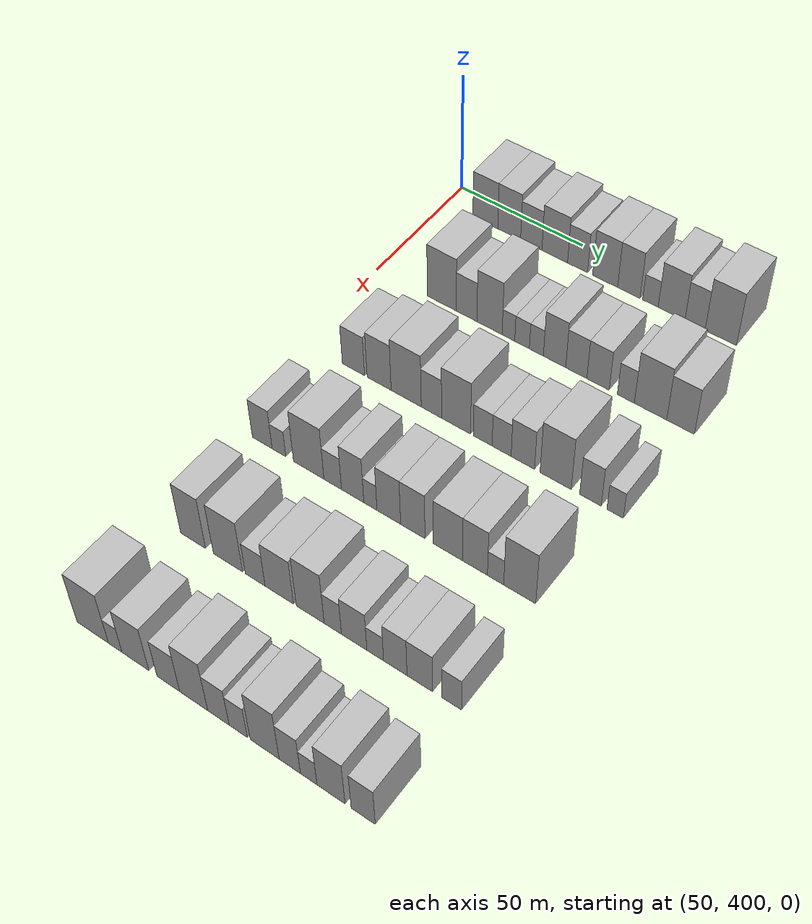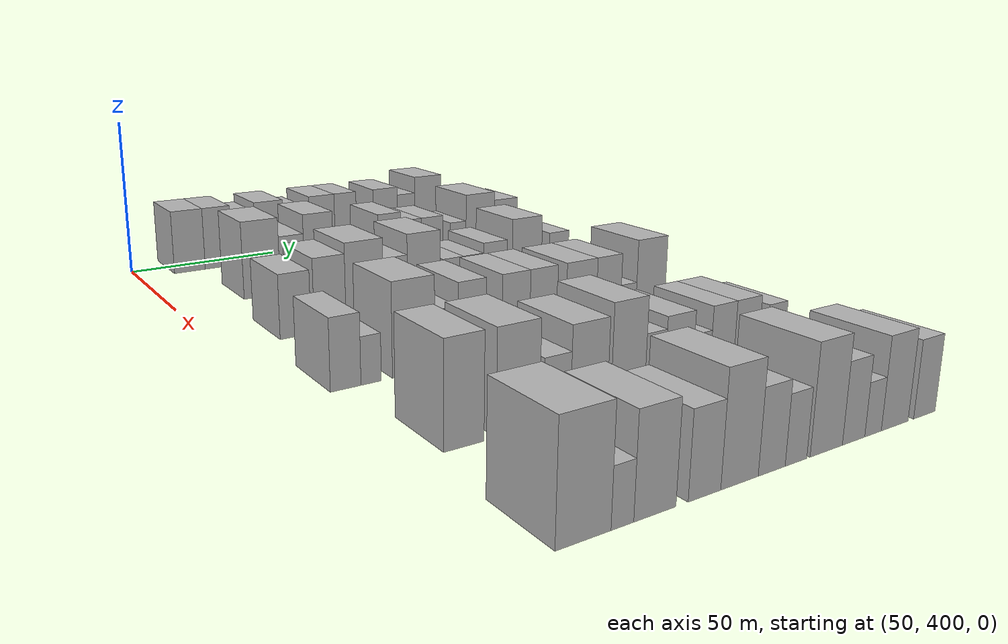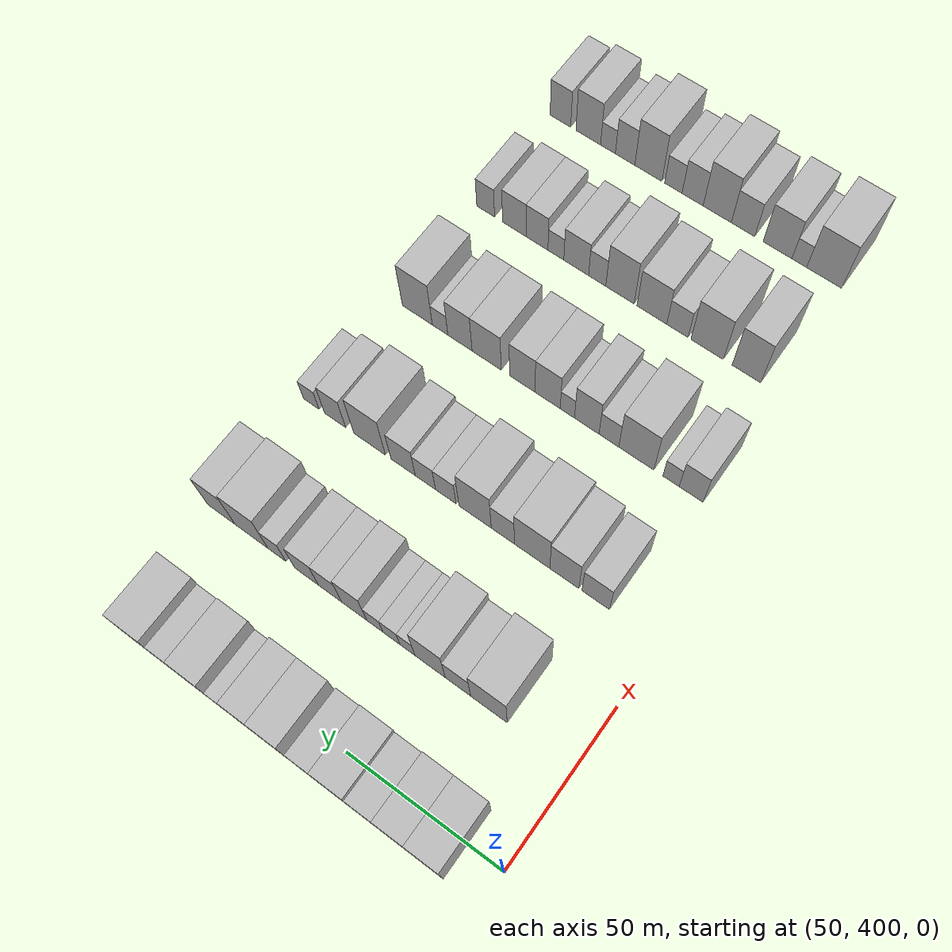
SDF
<sdf version="1.6">
 <world name="default">
  <model name="building_118">
   <static>1</static>
   <pose>50.0000 416.6661 0 0.000000 0.000000 0.000000</pose>
   <link name="link">
    <pose>0 0 10.50 0 0 0</pose>
    <collision name="collision"><geometry><box><size>20.0000 10.4789 21.0000</size></box></geometry></collision>
    <visual name="visual">
     <cast_shadows>0</cast_shadows>
     <geometry><box><size>20.0000 10.4789 21.0000</size></box></geometry>
     <material>
      <script>
       <uri>model://HANNAS_wall/materials/scripts</uri>
       <uri>model://HANNAS_wall/materials/textures</uri>
       <name>vrc/HANNAS_wall</name>
      </script>
     </material>
    </visual>
   </link>
  </model>
  <model name="building_119">
   <static>1</static>
   <pose>50.0000 426.6349 0 0.000000 0.000000 0.000000</pose>
   <link name="link">
    <pose>0 0 10.50 0 0 0</pose>
    <collision name="collision"><geometry><box><size>20.0000 9.4588 21.0000</size></box></geometry></collision>
    <visual name="visual">
     <cast_shadows>0</cast_shadows>
     <geometry><box><size>20.0000 9.4588 21.0000</size></box></geometry>
     <material>
      <script>
       <uri>model://HANNAS_wall/materials/scripts</uri>
       <uri>model://HANNAS_wall/materials/textures</uri>
       <name>vrc/HANNAS_wall</name>
      </script>
     </material>
    </visual>
   </link>
  </model>
  <model name="building_120">
   <static>1</static>
   <pose>50.0000 435.7353 0 0.000000 0.000000 0.000000</pose>
   <link name="link">
    <pose>0 0 9.00 0 0 0</pose>
    <collision name="collision"><geometry><box><size>20.0000 8.7420 18.0000</size></box></geometry></collision>
    <visual name="visual">
     <cast_shadows>0</cast_shadows>
     <geometry><box><size>20.0000 8.7420 18.0000</size></box></geometry>
     <material>
      <script>
       <uri>model://HANNAS_wall/materials/scripts</uri>
       <uri>model://HANNAS_wall/materials/textures</uri>
       <name>vrc/HANNAS_wall</name>
      </script>
     </material>
    </visual>
   </link>
  </model>
  <model name="building_121">
   <static>1</static>
   <pose>50.0000 445.3086 0 0.000000 0.000000 0.000000</pose>
   <link name="link">
    <pose>0 0 10.50 0 0 0</pose>
    <collision name="collision"><geometry><box><size>20.0000 10.4044 21.0000</size></box></geometry></collision>
    <visual name="visual">
     <cast_shadows>0</cast_shadows>
     <geometry><box><size>20.0000 10.4044 21.0000</size></box></geometry>
     <material>
      <script>
       <uri>model://HANNAS_wall/materials/scripts</uri>
       <uri>model://HANNAS_wall/materials/textures</uri>
       <name>vrc/HANNAS_wall</name>
      </script>
     </material>
    </visual>
   </link>
  </model>
  <model name="building_122">
   <static>1</static>
   <pose>50.0000 454.5084 0 0.000000 0.000000 0.000000</pose>
   <link name="link">
    <pose>0 0 9.00 0 0 0</pose>
    <collision name="collision"><geometry><box><size>20.0000 7.9953 18.0000</size></box></geometry></collision>
    <visual name="visual">
     <cast_shadows>0</cast_shadows>
     <geometry><box><size>20.0000 7.9953 18.0000</size></box></geometry>
     <material>
      <script>
       <uri>model://HANNAS_wall/materials/scripts</uri>
       <uri>model://HANNAS_wall/materials/textures</uri>
       <name>vrc/HANNAS_wall</name>
      </script>
     </material>
    </visual>
   </link>
  </model>
  <model name="building_123">
   <static>1</static>
   <pose>50.0000 465.4250 0 0.000000 0.000000 0.000000</pose>
   <link name="link">
    <pose>0 0 10.50 0 0 0</pose>
    <collision name="collision"><geometry><box><size>20.0000 9.8378 21.0000</size></box></geometry></collision>
    <visual name="visual">
     <cast_shadows>0</cast_shadows>
     <geometry><box><size>20.0000 9.8378 21.0000</size></box></geometry>
     <material>
      <script>
       <uri>model://HANNAS_wall/materials/scripts</uri>
       <uri>model://HANNAS_wall/materials/textures</uri>
       <name>vrc/HANNAS_wall</name>
      </script>
     </material>
    </visual>
   </link>
  </model>
  <model name="building_124">
   <static>1</static>
   <pose>50.0000 474.7172 0 0.000000 0.000000 0.000000</pose>
   <link name="link">
    <pose>0 0 10.50 0 0 0</pose>
    <collision name="collision"><geometry><box><size>20.0000 8.7466 21.0000</size></box></geometry></collision>
    <visual name="visual">
     <cast_shadows>0</cast_shadows>
     <geometry><box><size>20.0000 8.7466 21.0000</size></box></geometry>
     <material>
      <script>
       <uri>model://HANNAS_wall/materials/scripts</uri>
       <uri>model://HANNAS_wall/materials/textures</uri>
       <name>vrc/HANNAS_wall</name>
      </script>
     </material>
    </visual>
   </link>
  </model>
  <model name="building_125">
   <static>1</static>
   <pose>50.0000 483.0717 0 0.000000 0.000000 0.000000</pose>
   <link name="link">
    <pose>0 0 6.00 0 0 0</pose>
    <collision name="collision"><geometry><box><size>20.0000 5.9625 12.0000</size></box></geometry></collision>
    <visual name="visual">
     <cast_shadows>0</cast_shadows>
     <geometry><box><size>20.0000 5.9625 12.0000</size></box></geometry>
     <material>
      <script>
       <uri>model://HANNAS_wall/materials/scripts</uri>
       <uri>model://HANNAS_wall/materials/textures</uri>
       <name>vrc/HANNAS_wall</name>
      </script>
     </material>
    </visual>
   </link>
  </model>
  <model name="building_126">
   <static>1</static>
   <pose>50.0000 491.1469 0 0.000000 0.000000 0.000000</pose>
   <link name="link">
    <pose>0 0 10.50 0 0 0</pose>
    <collision name="collision"><geometry><box><size>20.0000 10.1880 21.0000</size></box></geometry></collision>
    <visual name="visual">
     <cast_shadows>0</cast_shadows>
     <geometry><box><size>20.0000 10.1880 21.0000</size></box></geometry>
     <material>
      <script>
       <uri>model://HANNAS_wall/materials/scripts</uri>
       <uri>model://HANNAS_wall/materials/textures</uri>
       <name>vrc/HANNAS_wall</name>
      </script>
     </material>
    </visual>
   </link>
  </model>
  <model name="building_127">
   <static>1</static>
   <pose>50.0000 500.0134 0 0.000000 0.000000 0.000000</pose>
   <link name="link">
    <pose>0 0 9.00 0 0 0</pose>
    <collision name="collision"><geometry><box><size>20.0000 7.5451 18.0000</size></box></geometry></collision>
    <visual name="visual">
     <cast_shadows>0</cast_shadows>
     <geometry><box><size>20.0000 7.5451 18.0000</size></box></geometry>
     <material>
      <script>
       <uri>model://HANNAS_wall/materials/scripts</uri>
       <uri>model://HANNAS_wall/materials/textures</uri>
       <name>vrc/HANNAS_wall</name>
      </script>
     </material>
    </visual>
   </link>
  </model>
  <model name="building_128">
   <static>1</static>
   <pose>50.0000 509.6030 0 0.000000 0.000000 0.000000</pose>
   <link name="link">
    <pose>0 0 12.00 0 0 0</pose>
    <collision name="collision"><geometry><box><size>20.0000 11.6340 24.0000</size></box></geometry></collision>
    <visual name="visual">
     <cast_shadows>0</cast_shadows>
     <geometry><box><size>20.0000 11.6340 24.0000</size></box></geometry>
     <material>
      <script>
       <uri>model://HANNAS_wall/materials/scripts</uri>
       <uri>model://HANNAS_wall/materials/textures</uri>
       <name>vrc/HANNAS_wall</name>
      </script>
     </material>
    </visual>
   </link>
  </model>
  <model name="building_256">
   <static>1</static>
   <pose>90.0000 426.7580 0 0.000000 0.000000 0.000000</pose>
   <link name="link">
    <pose>0 0 12.00 0 0 0</pose>
    <collision name="collision"><geometry><box><size>20.0000 11.7481 24.0000</size></box></geometry></collision>
    <visual name="visual">
     <cast_shadows>0</cast_shadows>
     <geometry><box><size>20.0000 11.7481 24.0000</size></box></geometry>
     <material>
      <script>
       <uri>model://HANNAS_wall/materials/scripts</uri>
       <uri>model://HANNAS_wall/materials/textures</uri>
       <name>vrc/HANNAS_wall</name>
      </script>
     </material>
    </visual>
   </link>
  </model>
  <model name="building_257">
   <static>1</static>
   <pose>90.0000 436.7488 0 0.000000 0.000000 0.000000</pose>
   <link name="link">
    <pose>0 0 9.00 0 0 0</pose>
    <collision name="collision"><geometry><box><size>20.0000 8.2335 18.0000</size></box></geometry></collision>
    <visual name="visual">
     <cast_shadows>0</cast_shadows>
     <geometry><box><size>20.0000 8.2335 18.0000</size></box></geometry>
     <material>
      <script>
       <uri>model://HANNAS_wall/materials/scripts</uri>
       <uri>model://HANNAS_wall/materials/textures</uri>
       <name>vrc/HANNAS_wall</name>
      </script>
     </material>
    </visual>
   </link>
  </model>
  <model name="building_258">
   <static>1</static>
   <pose>90.0000 445.8795 0 0.000000 0.000000 0.000000</pose>
   <link name="link">
    <pose>0 0 12.00 0 0 0</pose>
    <collision name="collision"><geometry><box><size>20.0000 10.0279 24.0000</size></box></geometry></collision>
    <visual name="visual">
     <cast_shadows>0</cast_shadows>
     <geometry><box><size>20.0000 10.0279 24.0000</size></box></geometry>
     <material>
      <script>
       <uri>model://HANNAS_wall/materials/scripts</uri>
       <uri>model://HANNAS_wall/materials/textures</uri>
       <name>vrc/HANNAS_wall</name>
      </script>
     </material>
    </visual>
   </link>
  </model>
  <model name="building_259">
   <static>1</static>
   <pose>90.0000 453.3742 0 0.000000 0.000000 0.000000</pose>
   <link name="link">
    <pose>0 0 6.00 0 0 0</pose>
    <collision name="collision"><geometry><box><size>20.0000 4.9616 12.0000</size></box></geometry></collision>
    <visual name="visual">
     <cast_shadows>0</cast_shadows>
     <geometry><box><size>20.0000 4.9616 12.0000</size></box></geometry>
     <material>
      <script>
       <uri>model://HANNAS_wall/materials/scripts</uri>
       <uri>model://HANNAS_wall/materials/textures</uri>
       <name>vrc/HANNAS_wall</name>
      </script>
     </material>
    </visual>
   </link>
  </model>
  <model name="building_260">
   <static>1</static>
   <pose>90.0000 458.6961 0 0.000000 0.000000 0.000000</pose>
   <link name="link">
    <pose>0 0 6.00 0 0 0</pose>
    <collision name="collision"><geometry><box><size>20.0000 5.6822 12.0000</size></box></geometry></collision>
    <visual name="visual">
     <cast_shadows>0</cast_shadows>
     <geometry><box><size>20.0000 5.6822 12.0000</size></box></geometry>
     <material>
      <script>
       <uri>model://HANNAS_wall/materials/scripts</uri>
       <uri>model://HANNAS_wall/materials/textures</uri>
       <name>vrc/HANNAS_wall</name>
      </script>
     </material>
    </visual>
   </link>
  </model>
  <model name="building_261">
   <static>1</static>
   <pose>90.0000 464.2457 0 0.000000 0.000000 0.000000</pose>
   <link name="link">
    <pose>0 0 6.00 0 0 0</pose>
    <collision name="collision"><geometry><box><size>20.0000 5.4170 12.0000</size></box></geometry></collision>
    <visual name="visual">
     <cast_shadows>0</cast_shadows>
     <geometry><box><size>20.0000 5.4170 12.0000</size></box></geometry>
     <material>
      <script>
       <uri>model://HANNAS_wall/materials/scripts</uri>
       <uri>model://HANNAS_wall/materials/textures</uri>
       <name>vrc/HANNAS_wall</name>
      </script>
     </material>
    </visual>
   </link>
  </model>
  <model name="building_262">
   <static>1</static>
   <pose>90.0000 471.2150 0 0.000000 0.000000 0.000000</pose>
   <link name="link">
    <pose>0 0 10.50 0 0 0</pose>
    <collision name="collision"><geometry><box><size>20.0000 8.5217 21.0000</size></box></geometry></collision>
    <visual name="visual">
     <cast_shadows>0</cast_shadows>
     <geometry><box><size>20.0000 8.5217 21.0000</size></box></geometry>
     <material>
      <script>
       <uri>model://HANNAS_wall/materials/scripts</uri>
       <uri>model://HANNAS_wall/materials/textures</uri>
       <name>vrc/HANNAS_wall</name>
      </script>
     </material>
    </visual>
   </link>
  </model>
  <model name="building_263">
   <static>1</static>
   <pose>90.0000 479.4768 0 0.000000 0.000000 0.000000</pose>
   <link name="link">
    <pose>0 0 9.00 0 0 0</pose>
    <collision name="collision"><geometry><box><size>20.0000 8.0020 18.0000</size></box></geometry></collision>
    <visual name="visual">
     <cast_shadows>0</cast_shadows>
     <geometry><box><size>20.0000 8.0020 18.0000</size></box></geometry>
     <material>
      <script>
       <uri>model://HANNAS_wall/materials/scripts</uri>
       <uri>model://HANNAS_wall/materials/textures</uri>
       <name>vrc/HANNAS_wall</name>
      </script>
     </material>
    </visual>
   </link>
  </model>
  <model name="building_264">
   <static>1</static>
   <pose>90.0000 487.6506 0 0.000000 0.000000 0.000000</pose>
   <link name="link">
    <pose>0 0 9.00 0 0 0</pose>
    <collision name="collision"><geometry><box><size>20.0000 8.3455 18.0000</size></box></geometry></collision>
    <visual name="visual">
     <cast_shadows>0</cast_shadows>
     <geometry><box><size>20.0000 8.3455 18.0000</size></box></geometry>
     <material>
      <script>
       <uri>model://HANNAS_wall/materials/scripts</uri>
       <uri>model://HANNAS_wall/materials/textures</uri>
       <name>vrc/HANNAS_wall</name>
      </script>
     </material>
    </visual>
   </link>
  </model>
  <model name="building_265">
   <static>1</static>
   <pose>90.0000 497.9551 0 0.000000 0.000000 0.000000</pose>
   <link name="link">
    <pose>0 0 7.50 0 0 0</pose>
    <collision name="collision"><geometry><box><size>20.0000 6.2635 15.0000</size></box></geometry></collision>
    <visual name="visual">
     <cast_shadows>0</cast_shadows>
     <geometry><box><size>20.0000 6.2635 15.0000</size></box></geometry>
     <material>
      <script>
       <uri>model://HANNAS_wall/materials/scripts</uri>
       <uri>model://HANNAS_wall/materials/textures</uri>
       <name>vrc/HANNAS_wall</name>
      </script>
     </material>
    </visual>
   </link>
  </model>
  <model name="building_266">
   <static>1</static>
   <pose>90.0000 506.9523 0 0.000000 0.000000 0.000000</pose>
   <link name="link">
    <pose>0 0 12.00 0 0 0</pose>
    <collision name="collision"><geometry><box><size>20.0000 11.7308 24.0000</size></box></geometry></collision>
    <visual name="visual">
     <cast_shadows>0</cast_shadows>
     <geometry><box><size>20.0000 11.7308 24.0000</size></box></geometry>
     <material>
      <script>
       <uri>model://HANNAS_wall/materials/scripts</uri>
       <uri>model://HANNAS_wall/materials/textures</uri>
       <name>vrc/HANNAS_wall</name>
      </script>
     </material>
    </visual>
   </link>
  </model>
  <model name="building_267">
   <static>1</static>
   <pose>90.0000 517.7709 0 0.000000 0.000000 0.000000</pose>
   <link name="link">
    <pose>0 0 10.50 0 0 0</pose>
    <collision name="collision"><geometry><box><size>20.0000 9.9063 21.0000</size></box></geometry></collision>
    <visual name="visual">
     <cast_shadows>0</cast_shadows>
     <geometry><box><size>20.0000 9.9063 21.0000</size></box></geometry>
     <material>
      <script>
       <uri>model://HANNAS_wall/materials/scripts</uri>
       <uri>model://HANNAS_wall/materials/textures</uri>
       <name>vrc/HANNAS_wall</name>
      </script>
     </material>
    </visual>
   </link>
  </model>
  <model name="building_393">
   <static>1</static>
   <pose>130.0000 420.6282 0 0.000000 0.000000 0.000000</pose>
   <link name="link">
    <pose>0 0 9.00 0 0 0</pose>
    <collision name="collision"><geometry><box><size>20.0000 8.9388 18.0000</size></box></geometry></collision>
    <visual name="visual">
     <cast_shadows>0</cast_shadows>
     <geometry><box><size>20.0000 8.9388 18.0000</size></box></geometry>
     <material>
      <script>
       <uri>model://HANNAS_wall/materials/scripts</uri>
       <uri>model://HANNAS_wall/materials/textures</uri>
       <name>vrc/HANNAS_wall</name>
      </script>
     </material>
    </visual>
   </link>
  </model>
  <model name="building_394">
   <static>1</static>
   <pose>130.0000 430.8723 0 0.000000 0.000000 0.000000</pose>
   <link name="link">
    <pose>0 0 10.50 0 0 0</pose>
    <collision name="collision"><geometry><box><size>20.0000 9.5493 21.0000</size></box></geometry></collision>
    <visual name="visual">
     <cast_shadows>0</cast_shadows>
     <geometry><box><size>20.0000 9.5493 21.0000</size></box></geometry>
     <material>
      <script>
       <uri>model://HANNAS_wall/materials/scripts</uri>
       <uri>model://HANNAS_wall/materials/textures</uri>
       <name>vrc/HANNAS_wall</name>
      </script>
     </material>
    </visual>
   </link>
  </model>
  <model name="building_395">
   <static>1</static>
   <pose>130.0000 441.5391 0 0.000000 0.000000 0.000000</pose>
   <link name="link">
    <pose>0 0 12.00 0 0 0</pose>
    <collision name="collision"><geometry><box><size>20.0000 11.7843 24.0000</size></box></geometry></collision>
    <visual name="visual">
     <cast_shadows>0</cast_shadows>
     <geometry><box><size>20.0000 11.7843 24.0000</size></box></geometry>
     <material>
      <script>
       <uri>model://HANNAS_wall/materials/scripts</uri>
       <uri>model://HANNAS_wall/materials/textures</uri>
       <name>vrc/HANNAS_wall</name>
      </script>
     </material>
    </visual>
   </link>
  </model>
  <model name="building_396">
   <static>1</static>
   <pose>130.0000 451.3376 0 0.000000 0.000000 0.000000</pose>
   <link name="link">
    <pose>0 0 9.00 0 0 0</pose>
    <collision name="collision"><geometry><box><size>20.0000 7.8128 18.0000</size></box></geometry></collision>
    <visual name="visual">
     <cast_shadows>0</cast_shadows>
     <geometry><box><size>20.0000 7.8128 18.0000</size></box></geometry>
     <material>
      <script>
       <uri>model://HANNAS_wall/materials/scripts</uri>
       <uri>model://HANNAS_wall/materials/textures</uri>
       <name>vrc/HANNAS_wall</name>
      </script>
     </material>
    </visual>
   </link>
  </model>
  <model name="building_397">
   <static>1</static>
   <pose>130.0000 460.7536 0 0.000000 0.000000 0.000000</pose>
   <link name="link">
    <pose>0 0 12.00 0 0 0</pose>
    <collision name="collision"><geometry><box><size>20.0000 11.0192 24.0000</size></box></geometry></collision>
    <visual name="visual">
     <cast_shadows>0</cast_shadows>
     <geometry><box><size>20.0000 11.0192 24.0000</size></box></geometry>
     <material>
      <script>
       <uri>model://HANNAS_wall/materials/scripts</uri>
       <uri>model://HANNAS_wall/materials/textures</uri>
       <name>vrc/HANNAS_wall</name>
      </script>
     </material>
    </visual>
   </link>
  </model>
  <model name="building_398">
   <static>1</static>
   <pose>130.0000 470.8052 0 0.000000 0.000000 0.000000</pose>
   <link name="link">
    <pose>0 0 7.50 0 0 0</pose>
    <collision name="collision"><geometry><box><size>20.0000 7.0839 15.0000</size></box></geometry></collision>
    <visual name="visual">
     <cast_shadows>0</cast_shadows>
     <geometry><box><size>20.0000 7.0839 15.0000</size></box></geometry>
     <material>
      <script>
       <uri>model://HANNAS_wall/materials/scripts</uri>
       <uri>model://HANNAS_wall/materials/textures</uri>
       <name>vrc/HANNAS_wall</name>
      </script>
     </material>
    </visual>
   </link>
  </model>
  <model name="building_399">
   <static>1</static>
   <pose>130.0000 477.8671 0 0.000000 0.000000 0.000000</pose>
   <link name="link">
    <pose>0 0 7.50 0 0 0</pose>
    <collision name="collision"><geometry><box><size>20.0000 7.0399 15.0000</size></box></geometry></collision>
    <visual name="visual">
     <cast_shadows>0</cast_shadows>
     <geometry><box><size>20.0000 7.0399 15.0000</size></box></geometry>
     <material>
      <script>
       <uri>model://HANNAS_wall/materials/scripts</uri>
       <uri>model://HANNAS_wall/materials/textures</uri>
       <name>vrc/HANNAS_wall</name>
      </script>
     </material>
    </visual>
   </link>
  </model>
  <model name="building_400">
   <static>1</static>
   <pose>130.0000 485.6663 0 0.000000 0.000000 0.000000</pose>
   <link name="link">
    <pose>0 0 9.00 0 0 0</pose>
    <collision name="collision"><geometry><box><size>20.0000 8.5584 18.0000</size></box></geometry></collision>
    <visual name="visual">
     <cast_shadows>0</cast_shadows>
     <geometry><box><size>20.0000 8.5584 18.0000</size></box></geometry>
     <material>
      <script>
       <uri>model://HANNAS_wall/materials/scripts</uri>
       <uri>model://HANNAS_wall/materials/textures</uri>
       <name>vrc/HANNAS_wall</name>
      </script>
     </material>
    </visual>
   </link>
  </model>
  <model name="building_401">
   <static>1</static>
   <pose>130.0000 497.5579 0 0.000000 0.000000 0.000000</pose>
   <link name="link">
    <pose>0 0 12.00 0 0 0</pose>
    <collision name="collision"><geometry><box><size>20.0000 11.2248 24.0000</size></box></geometry></collision>
    <visual name="visual">
     <cast_shadows>0</cast_shadows>
     <geometry><box><size>20.0000 11.2248 24.0000</size></box></geometry>
     <material>
      <script>
       <uri>model://HANNAS_wall/materials/scripts</uri>
       <uri>model://HANNAS_wall/materials/textures</uri>
       <name>vrc/HANNAS_wall</name>
      </script>
     </material>
    </visual>
   </link>
  </model>
  <model name="building_402">
   <static>1</static>
   <pose>130.0000 509.9693 0 0.000000 0.000000 0.000000</pose>
   <link name="link">
    <pose>0 0 9.00 0 0 0</pose>
    <collision name="collision"><geometry><box><size>20.0000 7.5980 18.0000</size></box></geometry></collision>
    <visual name="visual">
     <cast_shadows>0</cast_shadows>
     <geometry><box><size>20.0000 7.5980 18.0000</size></box></geometry>
     <material>
      <script>
       <uri>model://HANNAS_wall/materials/scripts</uri>
       <uri>model://HANNAS_wall/materials/textures</uri>
       <name>vrc/HANNAS_wall</name>
      </script>
     </material>
    </visual>
   </link>
  </model>
  <model name="building_403">
   <static>1</static>
   <pose>130.0000 518.6241 0 0.000000 0.000000 0.000000</pose>
   <link name="link">
    <pose>0 0 6.00 0 0 0</pose>
    <collision name="collision"><geometry><box><size>20.0000 5.7116 12.0000</size></box></geometry></collision>
    <visual name="visual">
     <cast_shadows>0</cast_shadows>
     <geometry><box><size>20.0000 5.7116 12.0000</size></box></geometry>
     <material>
      <script>
       <uri>model://HANNAS_wall/materials/scripts</uri>
       <uri>model://HANNAS_wall/materials/textures</uri>
       <name>vrc/HANNAS_wall</name>
      </script>
     </material>
    </visual>
   </link>
  </model>
  <model name="building_533">
   <static>1</static>
   <pose>170.0000 416.0304 0 0.000000 0.000000 0.000000</pose>
   <link name="link">
    <pose>0 0 9.00 0 0 0</pose>
    <collision name="collision"><geometry><box><size>20.0000 7.8690 18.0000</size></box></geometry></collision>
    <visual name="visual">
     <cast_shadows>0</cast_shadows>
     <geometry><box><size>20.0000 7.8690 18.0000</size></box></geometry>
     <material>
      <script>
       <uri>model://HANNAS_wall/materials/scripts</uri>
       <uri>model://HANNAS_wall/materials/textures</uri>
       <name>vrc/HANNAS_wall</name>
      </script>
     </material>
    </visual>
   </link>
  </model>
  <model name="building_534">
   <static>1</static>
   <pose>170.0000 422.6663 0 0.000000 0.000000 0.000000</pose>
   <link name="link">
    <pose>0 0 6.00 0 0 0</pose>
    <collision name="collision"><geometry><box><size>20.0000 5.4027 12.0000</size></box></geometry></collision>
    <visual name="visual">
     <cast_shadows>0</cast_shadows>
     <geometry><box><size>20.0000 5.4027 12.0000</size></box></geometry>
     <material>
      <script>
       <uri>model://HANNAS_wall/materials/scripts</uri>
       <uri>model://HANNAS_wall/materials/textures</uri>
       <name>vrc/HANNAS_wall</name>
      </script>
     </material>
    </visual>
   </link>
  </model>
  <model name="building_535">
   <static>1</static>
   <pose>170.0000 434.2712 0 0.000000 0.000000 0.000000</pose>
   <link name="link">
    <pose>0 0 12.00 0 0 0</pose>
    <collision name="collision"><geometry><box><size>20.0000 11.8073 24.0000</size></box></geometry></collision>
    <visual name="visual">
     <cast_shadows>0</cast_shadows>
     <geometry><box><size>20.0000 11.8073 24.0000</size></box></geometry>
     <material>
      <script>
       <uri>model://HANNAS_wall/materials/scripts</uri>
       <uri>model://HANNAS_wall/materials/textures</uri>
       <name>vrc/HANNAS_wall</name>
      </script>
     </material>
    </visual>
   </link>
  </model>
  <model name="building_536">
   <static>1</static>
   <pose>170.0000 443.5326 0 0.000000 0.000000 0.000000</pose>
   <link name="link">
    <pose>0 0 7.50 0 0 0</pose>
    <collision name="collision"><geometry><box><size>20.0000 6.7155 15.0000</size></box></geometry></collision>
    <visual name="visual">
     <cast_shadows>0</cast_shadows>
     <geometry><box><size>20.0000 6.7155 15.0000</size></box></geometry>
     <material>
      <script>
       <uri>model://HANNAS_wall/materials/scripts</uri>
       <uri>model://HANNAS_wall/materials/textures</uri>
       <name>vrc/HANNAS_wall</name>
      </script>
     </material>
    </visual>
   </link>
  </model>
  <model name="building_537">
   <static>1</static>
   <pose>170.0000 451.0967 0 0.000000 0.000000 0.000000</pose>
   <link name="link">
    <pose>0 0 10.50 0 0 0</pose>
    <collision name="collision"><geometry><box><size>20.0000 8.4126 21.0000</size></box></geometry></collision>
    <visual name="visual">
     <cast_shadows>0</cast_shadows>
     <geometry><box><size>20.0000 8.4126 21.0000</size></box></geometry>
     <material>
      <script>
       <uri>model://HANNAS_wall/materials/scripts</uri>
       <uri>model://HANNAS_wall/materials/textures</uri>
       <name>vrc/HANNAS_wall</name>
      </script>
     </material>
    </visual>
   </link>
  </model>
  <model name="building_538">
   <static>1</static>
   <pose>170.0000 457.7618 0 0.000000 0.000000 0.000000</pose>
   <link name="link">
    <pose>0 0 6.00 0 0 0</pose>
    <collision name="collision"><geometry><box><size>20.0000 4.9177 12.0000</size></box></geometry></collision>
    <visual name="visual">
     <cast_shadows>0</cast_shadows>
     <geometry><box><size>20.0000 4.9177 12.0000</size></box></geometry>
     <material>
      <script>
       <uri>model://HANNAS_wall/materials/scripts</uri>
       <uri>model://HANNAS_wall/materials/textures</uri>
       <name>vrc/HANNAS_wall</name>
      </script>
     </material>
    </visual>
   </link>
  </model>
  <model name="building_539">
   <static>1</static>
   <pose>170.0000 464.6015 0 0.000000 0.000000 0.000000</pose>
   <link name="link">
    <pose>0 0 10.50 0 0 0</pose>
    <collision name="collision"><geometry><box><size>20.0000 8.7617 21.0000</size></box></geometry></collision>
    <visual name="visual">
     <cast_shadows>0</cast_shadows>
     <geometry><box><size>20.0000 8.7617 21.0000</size></box></geometry>
     <material>
      <script>
       <uri>model://HANNAS_wall/materials/scripts</uri>
       <uri>model://HANNAS_wall/materials/textures</uri>
       <name>vrc/HANNAS_wall</name>
      </script>
     </material>
    </visual>
   </link>
  </model>
  <model name="building_540">
   <static>1</static>
   <pose>170.0000 473.4489 0 0.000000 0.000000 0.000000</pose>
   <link name="link">
    <pose>0 0 10.50 0 0 0</pose>
    <collision name="collision"><geometry><box><size>20.0000 8.9331 21.0000</size></box></geometry></collision>
    <visual name="visual">
     <cast_shadows>0</cast_shadows>
     <geometry><box><size>20.0000 8.9331 21.0000</size></box></geometry>
     <material>
      <script>
       <uri>model://HANNAS_wall/materials/scripts</uri>
       <uri>model://HANNAS_wall/materials/textures</uri>
       <name>vrc/HANNAS_wall</name>
      </script>
     </material>
    </visual>
   </link>
  </model>
  <model name="building_541">
   <static>1</static>
   <pose>170.0000 486.1351 0 0.000000 0.000000 0.000000</pose>
   <link name="link">
    <pose>0 0 10.50 0 0 0</pose>
    <collision name="collision"><geometry><box><size>20.0000 10.4394 21.0000</size></box></geometry></collision>
    <visual name="visual">
     <cast_shadows>0</cast_shadows>
     <geometry><box><size>20.0000 10.4394 21.0000</size></box></geometry>
     <material>
      <script>
       <uri>model://HANNAS_wall/materials/scripts</uri>
       <uri>model://HANNAS_wall/materials/textures</uri>
       <name>vrc/HANNAS_wall</name>
      </script>
     </material>
    </visual>
   </link>
  </model>
  <model name="building_542">
   <static>1</static>
   <pose>170.0000 495.7307 0 0.000000 0.000000 0.000000</pose>
   <link name="link">
    <pose>0 0 10.50 0 0 0</pose>
    <collision name="collision"><geometry><box><size>20.0000 8.7518 21.0000</size></box></geometry></collision>
    <visual name="visual">
     <cast_shadows>0</cast_shadows>
     <geometry><box><size>20.0000 8.7518 21.0000</size></box></geometry>
     <material>
      <script>
       <uri>model://HANNAS_wall/materials/scripts</uri>
       <uri>model://HANNAS_wall/materials/textures</uri>
       <name>vrc/HANNAS_wall</name>
      </script>
     </material>
    </visual>
   </link>
  </model>
  <model name="building_543">
   <static>1</static>
   <pose>170.0000 502.9379 0 0.000000 0.000000 0.000000</pose>
   <link name="link">
    <pose>0 0 6.00 0 0 0</pose>
    <collision name="collision"><geometry><box><size>20.0000 5.6624 12.0000</size></box></geometry></collision>
    <visual name="visual">
     <cast_shadows>0</cast_shadows>
     <geometry><box><size>20.0000 5.6624 12.0000</size></box></geometry>
     <material>
      <script>
       <uri>model://HANNAS_wall/materials/scripts</uri>
       <uri>model://HANNAS_wall/materials/textures</uri>
       <name>vrc/HANNAS_wall</name>
      </script>
     </material>
    </visual>
   </link>
  </model>
  <model name="building_544">
   <static>1</static>
   <pose>170.0000 511.2768 0 0.000000 0.000000 0.000000</pose>
   <link name="link">
    <pose>0 0 12.00 0 0 0</pose>
    <collision name="collision"><geometry><box><size>20.0000 11.0154 24.0000</size></box></geometry></collision>
    <visual name="visual">
     <cast_shadows>0</cast_shadows>
     <geometry><box><size>20.0000 11.0154 24.0000</size></box></geometry>
     <material>
      <script>
       <uri>model://HANNAS_wall/materials/scripts</uri>
       <uri>model://HANNAS_wall/materials/textures</uri>
       <name>vrc/HANNAS_wall</name>
      </script>
     </material>
    </visual>
   </link>
  </model>
  <model name="building_666">
   <static>1</static>
   <pose>210.0000 422.9244 0 0.000000 0.000000 0.000000</pose>
   <link name="link">
    <pose>0 0 12.00 0 0 0</pose>
    <collision name="collision"><geometry><box><size>20.0000 9.6665 24.0000</size></box></geometry></collision>
    <visual name="visual">
     <cast_shadows>0</cast_shadows>
     <geometry><box><size>20.0000 9.6665 24.0000</size></box></geometry>
     <material>
      <script>
       <uri>model://HANNAS_wall/materials/scripts</uri>
       <uri>model://HANNAS_wall/materials/textures</uri>
       <name>vrc/HANNAS_wall</name>
      </script>
     </material>
    </visual>
   </link>
  </model>
  <model name="building_667">
   <static>1</static>
   <pose>210.0000 436.3171 0 0.000000 0.000000 0.000000</pose>
   <link name="link">
    <pose>0 0 12.00 0 0 0</pose>
    <collision name="collision"><geometry><box><size>20.0000 11.1189 24.0000</size></box></geometry></collision>
    <visual name="visual">
     <cast_shadows>0</cast_shadows>
     <geometry><box><size>20.0000 11.1189 24.0000</size></box></geometry>
     <material>
      <script>
       <uri>model://HANNAS_wall/materials/scripts</uri>
       <uri>model://HANNAS_wall/materials/textures</uri>
       <name>vrc/HANNAS_wall</name>
      </script>
     </material>
    </visual>
   </link>
  </model>
  <model name="building_668">
   <static>1</static>
   <pose>210.0000 446.5635 0 0.000000 0.000000 0.000000</pose>
   <link name="link">
    <pose>0 0 7.50 0 0 0</pose>
    <collision name="collision"><geometry><box><size>20.0000 7.3739 15.0000</size></box></geometry></collision>
    <visual name="visual">
     <cast_shadows>0</cast_shadows>
     <geometry><box><size>20.0000 7.3739 15.0000</size></box></geometry>
     <material>
      <script>
       <uri>model://HANNAS_wall/materials/scripts</uri>
       <uri>model://HANNAS_wall/materials/textures</uri>
       <name>vrc/HANNAS_wall</name>
      </script>
     </material>
    </visual>
   </link>
  </model>
  <model name="building_669">
   <static>1</static>
   <pose>210.0000 455.4758 0 0.000000 0.000000 0.000000</pose>
   <link name="link">
    <pose>0 0 10.50 0 0 0</pose>
    <collision name="collision"><geometry><box><size>20.0000 10.4506 21.0000</size></box></geometry></collision>
    <visual name="visual">
     <cast_shadows>0</cast_shadows>
     <geometry><box><size>20.0000 10.4506 21.0000</size></box></geometry>
     <material>
      <script>
       <uri>model://HANNAS_wall/materials/scripts</uri>
       <uri>model://HANNAS_wall/materials/textures</uri>
       <name>vrc/HANNAS_wall</name>
      </script>
     </material>
    </visual>
   </link>
  </model>
  <model name="building_670">
   <static>1</static>
   <pose>210.0000 466.7438 0 0.000000 0.000000 0.000000</pose>
   <link name="link">
    <pose>0 0 12.00 0 0 0</pose>
    <collision name="collision"><geometry><box><size>20.0000 10.0853 24.0000</size></box></geometry></collision>
    <visual name="visual">
     <cast_shadows>0</cast_shadows>
     <geometry><box><size>20.0000 10.0853 24.0000</size></box></geometry>
     <material>
      <script>
       <uri>model://HANNAS_wall/materials/scripts</uri>
       <uri>model://HANNAS_wall/materials/textures</uri>
       <name>vrc/HANNAS_wall</name>
      </script>
     </material>
    </visual>
   </link>
  </model>
  <model name="building_671">
   <static>1</static>
   <pose>210.0000 474.8746 0 0.000000 0.000000 0.000000</pose>
   <link name="link">
    <pose>0 0 7.50 0 0 0</pose>
    <collision name="collision"><geometry><box><size>20.0000 6.1763 15.0000</size></box></geometry></collision>
    <visual name="visual">
     <cast_shadows>0</cast_shadows>
     <geometry><box><size>20.0000 6.1763 15.0000</size></box></geometry>
     <material>
      <script>
       <uri>model://HANNAS_wall/materials/scripts</uri>
       <uri>model://HANNAS_wall/materials/textures</uri>
       <name>vrc/HANNAS_wall</name>
      </script>
     </material>
    </visual>
   </link>
  </model>
  <model name="building_672">
   <static>1</static>
   <pose>210.0000 482.4415 0 0.000000 0.000000 0.000000</pose>
   <link name="link">
    <pose>0 0 9.00 0 0 0</pose>
    <collision name="collision"><geometry><box><size>20.0000 8.9576 18.0000</size></box></geometry></collision>
    <visual name="visual">
     <cast_shadows>0</cast_shadows>
     <geometry><box><size>20.0000 8.9576 18.0000</size></box></geometry>
     <material>
      <script>
       <uri>model://HANNAS_wall/materials/scripts</uri>
       <uri>model://HANNAS_wall/materials/textures</uri>
       <name>vrc/HANNAS_wall</name>
      </script>
     </material>
    </visual>
   </link>
  </model>
  <model name="building_673">
   <static>1</static>
   <pose>210.0000 489.8164 0 0.000000 0.000000 0.000000</pose>
   <link name="link">
    <pose>0 0 6.00 0 0 0</pose>
    <collision name="collision"><geometry><box><size>20.0000 5.7922 12.0000</size></box></geometry></collision>
    <visual name="visual">
     <cast_shadows>0</cast_shadows>
     <geometry><box><size>20.0000 5.7922 12.0000</size></box></geometry>
     <material>
      <script>
       <uri>model://HANNAS_wall/materials/scripts</uri>
       <uri>model://HANNAS_wall/materials/textures</uri>
       <name>vrc/HANNAS_wall</name>
      </script>
     </material>
    </visual>
   </link>
  </model>
  <model name="building_674">
   <static>1</static>
   <pose>210.0000 496.7532 0 0.000000 0.000000 0.000000</pose>
   <link name="link">
    <pose>0 0 9.00 0 0 0</pose>
    <collision name="collision"><geometry><box><size>20.0000 8.0813 18.0000</size></box></geometry></collision>
    <visual name="visual">
     <cast_shadows>0</cast_shadows>
     <geometry><box><size>20.0000 8.0813 18.0000</size></box></geometry>
     <material>
      <script>
       <uri>model://HANNAS_wall/materials/scripts</uri>
       <uri>model://HANNAS_wall/materials/textures</uri>
       <name>vrc/HANNAS_wall</name>
      </script>
     </material>
    </visual>
   </link>
  </model>
  <model name="building_675">
   <static>1</static>
   <pose>210.0000 505.1305 0 0.000000 0.000000 0.000000</pose>
   <link name="link">
    <pose>0 0 9.00 0 0 0</pose>
    <collision name="collision"><geometry><box><size>20.0000 8.6734 18.0000</size></box></geometry></collision>
    <visual name="visual">
     <cast_shadows>0</cast_shadows>
     <geometry><box><size>20.0000 8.6734 18.0000</size></box></geometry>
     <material>
      <script>
       <uri>model://HANNAS_wall/materials/scripts</uri>
       <uri>model://HANNAS_wall/materials/textures</uri>
       <name>vrc/HANNAS_wall</name>
      </script>
     </material>
    </visual>
   </link>
  </model>
  <model name="building_676">
   <static>1</static>
   <pose>210.0000 515.8028 0 0.000000 0.000000 0.000000</pose>
   <link name="link">
    <pose>0 0 7.50 0 0 0</pose>
    <collision name="collision"><geometry><box><size>20.0000 6.6712 15.0000</size></box></geometry></collision>
    <visual name="visual">
     <cast_shadows>0</cast_shadows>
     <geometry><box><size>20.0000 6.6712 15.0000</size></box></geometry>
     <material>
      <script>
       <uri>model://HANNAS_wall/materials/scripts</uri>
       <uri>model://HANNAS_wall/materials/textures</uri>
       <name>vrc/HANNAS_wall</name>
      </script>
     </material>
    </visual>
   </link>
  </model>
  <model name="building_805">
   <static>1</static>
   <pose>250.0000 420.7037 0 0.000000 0.000000 0.000000</pose>
   <link name="link">
    <pose>0 0 12.00 0 0 0</pose>
    <collision name="collision"><geometry><box><size>20.0000 11.9902 24.0000</size></box></geometry></collision>
    <visual name="visual">
     <cast_shadows>0</cast_shadows>
     <geometry><box><size>20.0000 11.9902 24.0000</size></box></geometry>
     <material>
      <script>
       <uri>model://HANNAS_wall/materials/scripts</uri>
       <uri>model://HANNAS_wall/materials/textures</uri>
       <name>vrc/HANNAS_wall</name>
      </script>
     </material>
    </visual>
   </link>
  </model>
  <model name="building_806">
   <static>1</static>
   <pose>250.0000 429.2651 0 0.000000 0.000000 0.000000</pose>
   <link name="link">
    <pose>0 0 6.00 0 0 0</pose>
    <collision name="collision"><geometry><box><size>20.0000 5.1325 12.0000</size></box></geometry></collision>
    <visual name="visual">
     <cast_shadows>0</cast_shadows>
     <geometry><box><size>20.0000 5.1325 12.0000</size></box></geometry>
     <material>
      <script>
       <uri>model://HANNAS_wall/materials/scripts</uri>
       <uri>model://HANNAS_wall/materials/textures</uri>
       <name>vrc/HANNAS_wall</name>
      </script>
     </material>
    </visual>
   </link>
  </model>
  <model name="building_807">
   <static>1</static>
   <pose>250.0000 436.8326 0 0.000000 0.000000 0.000000</pose>
   <link name="link">
    <pose>0 0 10.50 0 0 0</pose>
    <collision name="collision"><geometry><box><size>20.0000 10.0025 21.0000</size></box></geometry></collision>
    <visual name="visual">
     <cast_shadows>0</cast_shadows>
     <geometry><box><size>20.0000 10.0025 21.0000</size></box></geometry>
     <material>
      <script>
       <uri>model://HANNAS_wall/materials/scripts</uri>
       <uri>model://HANNAS_wall/materials/textures</uri>
       <name>vrc/HANNAS_wall</name>
      </script>
     </material>
    </visual>
   </link>
  </model>
  <model name="building_808">
   <static>1</static>
   <pose>250.0000 448.9877 0 0.000000 0.000000 0.000000</pose>
   <link name="link">
    <pose>0 0 9.00 0 0 0</pose>
    <collision name="collision"><geometry><box><size>20.0000 8.3075 18.0000</size></box></geometry></collision>
    <visual name="visual">
     <cast_shadows>0</cast_shadows>
     <geometry><box><size>20.0000 8.3075 18.0000</size></box></geometry>
     <material>
      <script>
       <uri>model://HANNAS_wall/materials/scripts</uri>
       <uri>model://HANNAS_wall/materials/textures</uri>
       <name>vrc/HANNAS_wall</name>
      </script>
     </material>
    </visual>
   </link>
  </model>
  <model name="building_809">
   <static>1</static>
   <pose>250.0000 458.1805 0 0.000000 0.000000 0.000000</pose>
   <link name="link">
    <pose>0 0 12.00 0 0 0</pose>
    <collision name="collision"><geometry><box><size>20.0000 10.0781 24.0000</size></box></geometry></collision>
    <visual name="visual">
     <cast_shadows>0</cast_shadows>
     <geometry><box><size>20.0000 10.0781 24.0000</size></box></geometry>
     <material>
      <script>
       <uri>model://HANNAS_wall/materials/scripts</uri>
       <uri>model://HANNAS_wall/materials/textures</uri>
       <name>vrc/HANNAS_wall</name>
      </script>
     </material>
    </visual>
   </link>
  </model>
  <model name="building_810">
   <static>1</static>
   <pose>250.0000 467.0313 0 0.000000 0.000000 0.000000</pose>
   <link name="link">
    <pose>0 0 9.00 0 0 0</pose>
    <collision name="collision"><geometry><box><size>20.0000 7.6235 18.0000</size></box></geometry></collision>
    <visual name="visual">
     <cast_shadows>0</cast_shadows>
     <geometry><box><size>20.0000 7.6235 18.0000</size></box></geometry>
     <material>
      <script>
       <uri>model://HANNAS_wall/materials/scripts</uri>
       <uri>model://HANNAS_wall/materials/textures</uri>
       <name>vrc/HANNAS_wall</name>
      </script>
     </material>
    </visual>
   </link>
  </model>
  <model name="building_811">
   <static>1</static>
   <pose>250.0000 474.0174 0 0.000000 0.000000 0.000000</pose>
   <link name="link">
    <pose>0 0 7.50 0 0 0</pose>
    <collision name="collision"><geometry><box><size>20.0000 6.3486 15.0000</size></box></geometry></collision>
    <visual name="visual">
     <cast_shadows>0</cast_shadows>
     <geometry><box><size>20.0000 6.3486 15.0000</size></box></geometry>
     <material>
      <script>
       <uri>model://HANNAS_wall/materials/scripts</uri>
       <uri>model://HANNAS_wall/materials/textures</uri>
       <name>vrc/HANNAS_wall</name>
      </script>
     </material>
    </visual>
   </link>
  </model>
  <model name="building_812">
   <static>1</static>
   <pose>250.0000 483.1806 0 0.000000 0.000000 0.000000</pose>
   <link name="link">
    <pose>0 0 12.00 0 0 0</pose>
    <collision name="collision"><geometry><box><size>20.0000 9.9780 24.0000</size></box></geometry></collision>
    <visual name="visual">
     <cast_shadows>0</cast_shadows>
     <geometry><box><size>20.0000 9.9780 24.0000</size></box></geometry>
     <material>
      <script>
       <uri>model://HANNAS_wall/materials/scripts</uri>
       <uri>model://HANNAS_wall/materials/textures</uri>
       <name>vrc/HANNAS_wall</name>
      </script>
     </material>
    </visual>
   </link>
  </model>
  <model name="building_813">
   <static>1</static>
   <pose>250.0000 491.7915 0 0.000000 0.000000 0.000000</pose>
   <link name="link">
    <pose>0 0 9.00 0 0 0</pose>
    <collision name="collision"><geometry><box><size>20.0000 7.2438 18.0000</size></box></geometry></collision>
    <visual name="visual">
     <cast_shadows>0</cast_shadows>
     <geometry><box><size>20.0000 7.2438 18.0000</size></box></geometry>
     <material>
      <script>
       <uri>model://HANNAS_wall/materials/scripts</uri>
       <uri>model://HANNAS_wall/materials/textures</uri>
       <name>vrc/HANNAS_wall</name>
      </script>
     </material>
    </visual>
   </link>
  </model>
  <model name="building_814">
   <static>1</static>
   <pose>250.0000 498.1846 0 0.000000 0.000000 0.000000</pose>
   <link name="link">
    <pose>0 0 6.00 0 0 0</pose>
    <collision name="collision"><geometry><box><size>20.0000 5.5423 12.0000</size></box></geometry></collision>
    <visual name="visual">
     <cast_shadows>0</cast_shadows>
     <geometry><box><size>20.0000 5.5423 12.0000</size></box></geometry>
     <material>
      <script>
       <uri>model://HANNAS_wall/materials/scripts</uri>
       <uri>model://HANNAS_wall/materials/textures</uri>
       <name>vrc/HANNAS_wall</name>
      </script>
     </material>
    </visual>
   </link>
  </model>
  <model name="building_815">
   <static>1</static>
   <pose>250.0000 505.6001 0 0.000000 0.000000 0.000000</pose>
   <link name="link">
    <pose>0 0 10.50 0 0 0</pose>
    <collision name="collision"><geometry><box><size>20.0000 9.2886 21.0000</size></box></geometry></collision>
    <visual name="visual">
     <cast_shadows>0</cast_shadows>
     <geometry><box><size>20.0000 9.2886 21.0000</size></box></geometry>
     <material>
      <script>
       <uri>model://HANNAS_wall/materials/scripts</uri>
       <uri>model://HANNAS_wall/materials/textures</uri>
       <name>vrc/HANNAS_wall</name>
      </script>
     </material>
    </visual>
   </link>
  </model>
  <model name="building_816">
   <static>1</static>
   <pose>250.0000 516.1557 0 0.000000 0.000000 0.000000</pose>
   <link name="link">
    <pose>0 0 9.00 0 0 0</pose>
    <collision name="collision"><geometry><box><size>20.0000 7.8227 18.0000</size></box></geometry></collision>
    <visual name="visual">
     <cast_shadows>0</cast_shadows>
     <geometry><box><size>20.0000 7.8227 18.0000</size></box></geometry>
     <material>
      <script>
       <uri>model://HANNAS_wall/materials/scripts</uri>
       <uri>model://HANNAS_wall/materials/textures</uri>
       <name>vrc/HANNAS_wall</name>
      </script>
     </material>
    </visual>
   </link>
  </model>
 </world>
</sdf>
